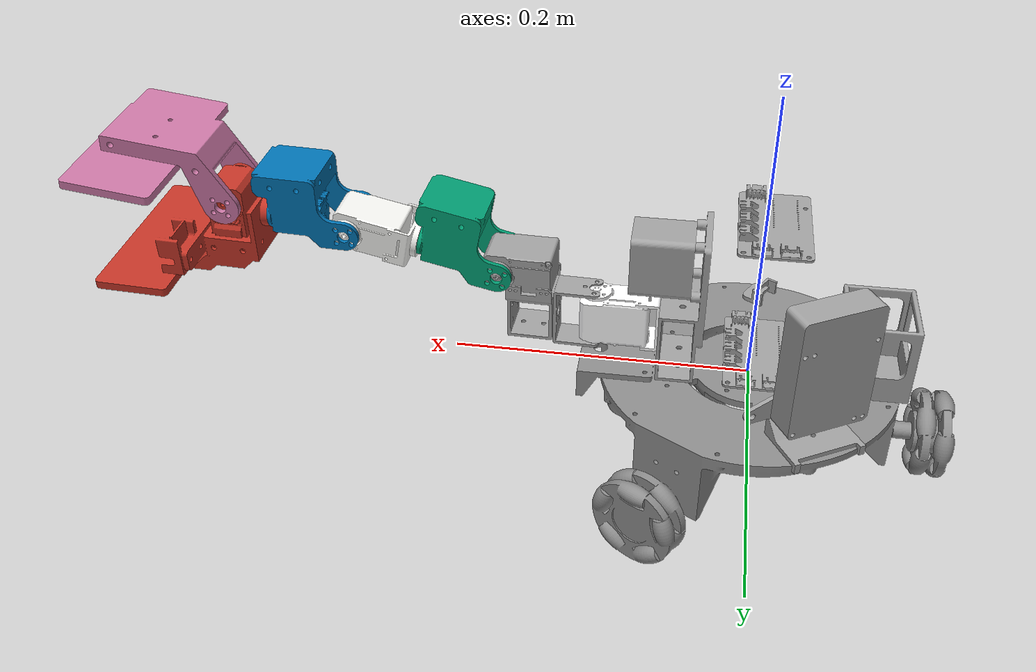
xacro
<?xml version="1.0" ?>
<robot name="assembly_main" xmlns:xacro="http://www.ros.org/wiki/xacro">

<xacro:include filename="/home/keigo/inrof2026_koma_urdf/urdf/materials.xacro" />
<xacro:include filename="/home/keigo/inrof2026_koma_urdf/urdf/assembly_main.trans" />
<link name="base_link">
  <inertial>
    <origin xyz="0.005188065648430864 -0.00026933142160205393 -0.01663287964245459" rpy="0 0 0"/>
    <mass value="4.27590428722208"/>
    <inertia ixx="0.013169" iyy="0.014957" izz="0.025457" ixy="0.000108" iyz="2.4e-05" ixz="-0.000335"/>
  </inertial>
  <visual>
    <origin xyz="0 0 0" rpy="0 0 0"/>
    <geometry>
      <mesh filename="package://assembly_main_description/meshes/base_link.stl" scale="0.001 0.001 0.001"/>
    </geometry>
    <material name="opaque141141141"/>
  </visual>
  <collision>
    <origin xyz="0 0 0" rpy="0 0 0"/>
    <geometry>
      <mesh filename="package://assembly_main_description/meshes/base_link.stl" scale="0.001 0.001 0.001"/>
    </geometry>
  </collision>
</link>

<link name="wheel_control_board_v7_2">
  <inertial>
    <origin xyz="0.021526332400288135 -0.034185196183547054 0.10000262508964397" rpy="0 0 0"/>
    <mass value="0.05597515361092653"/>
    <inertia ixx="3.1e-05" iyy="1e-05" izz="4e-05" ixy="1e-06" iyz="-0.0" ixz="-0.0"/>
  </inertial>
  <visual>
    <origin xyz="0.025 -0.0292 -0.0116" rpy="0 0 0"/>
    <geometry>
      <mesh filename="package://assembly_main_description/meshes/wheel_control_board_v7_2.stl" scale="0.001 0.001 0.001"/>
    </geometry>
    <material name="steel_satin"/>
  </visual>
  <collision>
    <origin xyz="0.025 -0.0292 -0.0116" rpy="0 0 0"/>
    <geometry>
      <mesh filename="package://assembly_main_description/meshes/wheel_control_board_v7_2.stl" scale="0.001 0.001 0.001"/>
    </geometry>
  </collision>
</link>

<link name="raspi4_bracket_v3_1">
  <inertial>
    <origin xyz="0.0038877953241863647 -0.006733826728159031 0.009501909481815375" rpy="0 0 0"/>
    <mass value="0.10147562490881655"/>
    <inertia ixx="2.2e-05" iyy="3.2e-05" izz="3.7e-05" ixy="-9e-06" iyz="4e-06" ixz="-3e-06"/>
  </inertial>
  <visual>
    <origin xyz="0.04 -0.069282 -0.005" rpy="0 0 0"/>
    <geometry>
      <mesh filename="package://assembly_main_description/meshes/raspi4_bracket_v3_1.stl" scale="0.001 0.001 0.001"/>
    </geometry>
    <material name="steel_satin"/>
  </visual>
  <collision>
    <origin xyz="0.04 -0.069282 -0.005" rpy="0 0 0"/>
    <geometry>
      <mesh filename="package://assembly_main_description/meshes/raspi4_bracket_v3_1.stl" scale="0.001 0.001 0.001"/>
    </geometry>
  </collision>
</link>

<link name="raspi4_v2_1">
  <inertial>
    <origin xyz="-0.00749999999999993 0.01299008311032395 0.038590101642230826" rpy="0 0 0"/>
    <mass value="0.7390104624417327"/>
    <inertia ixx="0.000507" iyy="0.00059" izz="0.000215" ixy="-7.2e-05" iyz="1e-06" ixz="1e-06"/>
  </inertial>
  <visual>
    <origin xyz="0.0335 -0.058024 -0.026" rpy="0 0 0"/>
    <geometry>
      <mesh filename="package://assembly_main_description/meshes/raspi4_v2_1.stl" scale="0.001 0.001 0.001"/>
    </geometry>
    <material name="steel_satin"/>
  </visual>
  <collision>
    <origin xyz="0.0335 -0.058024 -0.026" rpy="0 0 0"/>
    <geometry>
      <mesh filename="package://assembly_main_description/meshes/raspi4_v2_1.stl" scale="0.001 0.001 0.001"/>
    </geometry>
  </collision>
</link>

<link name="DZ47B_63_circuit_breaker_holder_v5_1">
  <inertial>
    <origin xyz="0.0378808179258513 -0.021870517177103727 0.0034323448804011907" rpy="0 0 0"/>
    <mass value="0.018924792034229306"/>
    <inertia ixx="8e-06" iyy="2.2e-05" izz="2.9e-05" ixy="1.2e-05" iyz="0.0" ixz="-0.0"/>
  </inertial>
  <visual>
    <origin xyz="0.076172 0.044934 -0.005" rpy="0 0 0"/>
    <geometry>
      <mesh filename="package://assembly_main_description/meshes/DZ47B_63_circuit_breaker_holder_v5_1.stl" scale="0.001 0.001 0.001"/>
    </geometry>
    <material name="steel_satin"/>
  </visual>
  <collision>
    <origin xyz="0.076172 0.044934 -0.005" rpy="0 0 0"/>
    <geometry>
      <mesh filename="package://assembly_main_description/meshes/DZ47B_63_circuit_breaker_holder_v5_1.stl" scale="0.001 0.001 0.001"/>
    </geometry>
  </collision>
</link>

<link name="wheel_control_board_v7_1">
  <inertial>
    <origin xyz="-0.01727366759971175 0.02421480381645276 0.006602625089643976" rpy="0 0 0"/>
    <mass value="0.05597515361092653"/>
    <inertia ixx="3.1e-05" iyy="1e-05" izz="4e-05" ixy="1e-06" iyz="-0.0" ixz="-0.0"/>
  </inertial>
  <visual>
    <origin xyz="-0.0138 0.0292 -0.005" rpy="0 0 0"/>
    <geometry>
      <mesh filename="package://assembly_main_description/meshes/wheel_control_board_v7_1.stl" scale="0.001 0.001 0.001"/>
    </geometry>
    <material name="steel_satin"/>
  </visual>
  <collision>
    <origin xyz="-0.0138 0.0292 -0.005" rpy="0 0 0"/>
    <geometry>
      <mesh filename="package://assembly_main_description/meshes/wheel_control_board_v7_1.stl" scale="0.001 0.001 0.001"/>
    </geometry>
  </collision>
</link>

<link name="lipo+battery_holder_v11_1">
  <inertial>
    <origin xyz="-0.014472410604743746 0.03065000000000157 0.01794464529626638" rpy="0 0 0"/>
    <mass value="0.1619868833872407"/>
    <inertia ixx="0.000116" iyy="0.000102" izz="0.00011" ixy="-0.0" iyz="0.0" ixz="0.0"/>
  </inertial>
  <visual>
    <origin xyz="0.064425 0.03065 -0.005" rpy="0 0 0"/>
    <geometry>
      <mesh filename="package://assembly_main_description/meshes/lipo+battery_holder_v11_1.stl" scale="0.001 0.001 0.001"/>
    </geometry>
    <material name="steel_satin"/>
  </visual>
  <collision>
    <origin xyz="0.064425 0.03065 -0.005" rpy="0 0 0"/>
    <geometry>
      <mesh filename="package://assembly_main_description/meshes/lipo+battery_holder_v11_1.stl" scale="0.001 0.001 0.001"/>
    </geometry>
  </collision>
</link>

<link name="arm_root_v6_1">
  <inertial>
    <origin xyz="0.028836205471188384 -6.461622097946888e-07 -0.006103014091259067" rpy="0 0 0"/>
    <mass value="0.05651259328313663"/>
    <inertia ixx="1e-05" iyy="2.1e-05" izz="1.6e-05" ixy="-0.0" iyz="-0.0" ixz="-1e-06"/>
  </inertial>
  <visual>
    <origin xyz="-0.0615 0.0 -0.044" rpy="0 0 0"/>
    <geometry>
      <mesh filename="package://assembly_main_description/meshes/arm_root_v6_1.stl" scale="0.001 0.001 0.001"/>
    </geometry>
    <material name="opaque254254255"/>
  </visual>
  <collision>
    <origin xyz="-0.0615 0.0 -0.044" rpy="0 0 0"/>
    <geometry>
      <mesh filename="package://assembly_main_description/meshes/arm_root_v6_1.stl" scale="0.001 0.001 0.001"/>
    </geometry>
  </collision>
</link>

<link name="serial_servo_driver_board_x2_v3_1">
  <inertial>
    <origin xyz="0.020000000000000136 0.013999999418854167 -0.018499999999996006" rpy="0 0 0"/>
    <mass value="0.4252482194783379"/>
    <inertia ixx="9.8e-05" iyy="0.000117" izz="9.4e-05" ixy="-0.0" iyz="0.0" ixz="-0.0"/>
  </inertial>
  <visual>
    <origin xyz="-0.0425 0.014 -0.103" rpy="0 0 0"/>
    <geometry>
      <mesh filename="package://assembly_main_description/meshes/serial_servo_driver_board_x2_v3_1.stl" scale="0.001 0.001 0.001"/>
    </geometry>
    <material name="steel_satin"/>
  </visual>
  <collision>
    <origin xyz="-0.0425 0.014 -0.103" rpy="0 0 0"/>
    <geometry>
      <mesh filename="package://assembly_main_description/meshes/serial_servo_driver_board_x2_v3_1.stl" scale="0.001 0.001 0.001"/>
    </geometry>
  </collision>
</link>

<link name="arm_bracket_v14_1">
  <inertial>
    <origin xyz="-0.005004825728865167 0.009999999984475738 0.04726352833341586" rpy="0 0 0"/>
    <mass value="0.21684183891762862"/>
    <inertia ixx="0.000236" iyy="0.000211" izz="7e-05" ixy="-0.0" iyz="0.0" ixz="3.5e-05"/>
  </inertial>
  <visual>
    <origin xyz="-0.047 0.01 -0.005" rpy="0 0 0"/>
    <geometry>
      <mesh filename="package://assembly_main_description/meshes/arm_bracket_v14_1.stl" scale="0.001 0.001 0.001"/>
    </geometry>
    <material name="steel_satin"/>
  </visual>
  <collision>
    <origin xyz="-0.047 0.01 -0.005" rpy="0 0 0"/>
    <geometry>
      <mesh filename="package://assembly_main_description/meshes/arm_bracket_v14_1.stl" scale="0.001 0.001 0.001"/>
    </geometry>
  </collision>
</link>

<link name="roll_1_test_v5_1">
  <inertial>
    <origin xyz="0.033338146216900594 0.020028208922864197 0.022131171383437162" rpy="0 0 0"/>
    <mass value="0.07353297901744495"/>
    <inertia ixx="2.4e-05" iyy="2.9e-05" izz="2.1e-05" ixy="0.0" iyz="-0.0" ixz="0.0"/>
  </inertial>
  <visual>
    <origin xyz="-0.166241 0.02309 -0.07071" rpy="0 0 0"/>
    <geometry>
      <mesh filename="package://assembly_main_description/meshes/roll_1_test_v5_1.stl" scale="0.001 0.001 0.001"/>
    </geometry>
    <material name="oak"/>
  </visual>
  <collision>
    <origin xyz="-0.166241 0.02309 -0.07071" rpy="0 0 0"/>
    <geometry>
      <mesh filename="package://assembly_main_description/meshes/roll_1_test_v5_1.stl" scale="0.001 0.001 0.001"/>
    </geometry>
  </collision>
</link>

<link name="pitch_2_test_v8_1">
  <inertial>
    <origin xyz="0.0311465623628171 -0.0004080664992568701 0.0063401442351962295" rpy="0 0 0"/>
    <mass value="0.058119652228533734"/>
    <inertia ixx="1.1e-05" iyy="1.7e-05" izz="2.2e-05" ixy="-0.0" iyz="0.0" ixz="-2e-06"/>
  </inertial>
  <visual>
    <origin xyz="-0.222219 0.003867 -0.081993" rpy="0 0 0"/>
    <geometry>
      <mesh filename="package://assembly_main_description/meshes/pitch_2_test_v8_1.stl" scale="0.001 0.001 0.001"/>
    </geometry>
    <material name="abs_white"/>
  </visual>
  <collision>
    <origin xyz="-0.222219 0.003867 -0.081993" rpy="0 0 0"/>
    <geometry>
      <mesh filename="package://assembly_main_description/meshes/pitch_2_test_v8_1.stl" scale="0.001 0.001 0.001"/>
    </geometry>
  </collision>
</link>

<link name="roll_2_test_v5_1">
  <inertial>
    <origin xyz="0.037026448800230594 0.02011130721296018 0.015094199070528766" rpy="0 0 0"/>
    <mass value="0.07365581710871624"/>
    <inertia ixx="2.4e-05" iyy="2.9e-05" izz="2.1e-05" ixy="0.0" iyz="-0.0" ixz="-1e-06"/>
  </inertial>
  <visual>
    <origin xyz="-0.266604 0.02625 -0.091794" rpy="0 0 0"/>
    <geometry>
      <mesh filename="package://assembly_main_description/meshes/roll_2_test_v5_1.stl" scale="0.001 0.001 0.001"/>
    </geometry>
    <material name="oak"/>
  </visual>
  <collision>
    <origin xyz="-0.266604 0.02625 -0.091794" rpy="0 0 0"/>
    <geometry>
      <mesh filename="package://assembly_main_description/meshes/roll_2_test_v5_1.stl" scale="0.001 0.001 0.001"/>
    </geometry>
  </collision>
</link>

<link name="hand_unit_v24_1">
  <inertial>
    <origin xyz="0.04289771903858419 -0.0015191951909393686 -0.01510531326448633" rpy="0 0 0"/>
    <mass value="0.13230659416117943"/>
    <inertia ixx="9.9e-05" iyy="0.000138" izz="0.000152" ixy="1e-06" iyz="1e-06" ixz="3.9e-05"/>
  </inertial>
  <visual>
    <origin xyz="-0.323821 0.007368 -0.091973" rpy="0 0 0"/>
    <geometry>
      <mesh filename="package://assembly_main_description/meshes/hand_unit_v24_1.stl" scale="0.001 0.001 0.001"/>
    </geometry>
    <material name="powder_coat_red"/>
  </visual>
  <collision>
    <origin xyz="-0.323821 0.007368 -0.091973" rpy="0 0 0"/>
    <geometry>
      <mesh filename="package://assembly_main_description/meshes/hand_unit_v24_1.stl" scale="0.001 0.001 0.001"/>
    </geometry>
  </collision>
</link>

<link name="hand_finger_v38_1">
  <inertial>
    <origin xyz="0.04146255250769765 0.021778097011469606 0.029487538405841812" rpy="0 0 0"/>
    <mass value="0.07994136386082434"/>
    <inertia ixx="5.9e-05" iyy="4.9e-05" izz="9.5e-05" ixy="-1e-06" iyz="2e-06" ixz="-9e-06"/>
  </inertial>
  <visual>
    <origin xyz="-0.348363 0.030515 -0.10626" rpy="0 0 0"/>
    <geometry>
      <mesh filename="package://assembly_main_description/meshes/hand_finger_v38_1.stl" scale="0.001 0.001 0.001"/>
    </geometry>
    <material name="oak"/>
  </visual>
  <collision>
    <origin xyz="-0.348363 0.030515 -0.10626" rpy="0 0 0"/>
    <geometry>
      <mesh filename="package://assembly_main_description/meshes/hand_finger_v38_1.stl" scale="0.001 0.001 0.001"/>
    </geometry>
  </collision>
</link>

<link name="pitch_1_test_v10_1">
  <inertial>
    <origin xyz="0.0448811665657521 -0.0015159947037514806 0.032721508245901094" rpy="0 0 0"/>
    <mass value="0.11843544806781975"/>
    <inertia ixx="5.6e-05" iyy="7.1e-05" izz="3.8e-05" ixy="-0.0" iyz="-1e-06" ixz="-1.3e-05"/>
  </inertial>
  <visual>
    <origin xyz="-0.1039 -0.0 -0.0194" rpy="0 0 0"/>
    <geometry>
      <mesh filename="package://assembly_main_description/meshes/pitch_1_test_v10_1.stl" scale="0.001 0.001 0.001"/>
    </geometry>
    <material name="steel_satin"/>
  </visual>
  <collision>
    <origin xyz="-0.1039 -0.0 -0.0194" rpy="0 0 0"/>
    <geometry>
      <mesh filename="package://assembly_main_description/meshes/pitch_1_test_v10_1.stl" scale="0.001 0.001 0.001"/>
    </geometry>
  </collision>
</link>

<joint name="Rigid 6" type="fixed">
  <origin xyz="-0.0388 0.0584 0.0066" rpy="0 0 0"/>
  <parent link="wheel_control_board_v7_1"/>
  <child link="wheel_control_board_v7_2"/>
</joint>

<joint name="Rigid 7" type="fixed">
  <origin xyz="-0.04 0.069282 0.005" rpy="0 0 0"/>
  <parent link="base_link"/>
  <child link="raspi4_bracket_v3_1"/>
</joint>

<joint name="Rigid 8" type="fixed">
  <origin xyz="0.0065 -0.011258 0.021" rpy="0 0 0"/>
  <parent link="raspi4_bracket_v3_1"/>
  <child link="raspi4_v2_1"/>
</joint>

<joint name="Rigid 17" type="fixed">
  <origin xyz="-0.076172 -0.044934 0.005" rpy="0 0 0"/>
  <parent link="base_link"/>
  <child link="DZ47B_63_circuit_breaker_holder_v5_1"/>
</joint>

<joint name="Rigid 27" type="fixed">
  <origin xyz="0.0138 -0.0292 0.005" rpy="0 0 0"/>
  <parent link="base_link"/>
  <child link="wheel_control_board_v7_1"/>
</joint>

<joint name="Rigid 31" type="fixed">
  <origin xyz="-0.064425 -0.03065 0.005" rpy="0 0 0"/>
  <parent link="base_link"/>
  <child link="lipo+battery_holder_v11_1"/>
</joint>

<joint name="Rigid 45" type="fixed">
  <origin xyz="0.0145 0.01 0.039" rpy="0 0 0"/>
  <parent link="arm_bracket_v14_1"/>
  <child link="arm_root_v6_1"/>
</joint>

<joint name="Rigid 46" type="fixed">
  <origin xyz="-0.0045 -0.004 0.098" rpy="0 0 0"/>
  <parent link="arm_bracket_v14_1"/>
  <child link="serial_servo_driver_board_x2_v3_1"/>
</joint>

<joint name="Rigid 47" type="fixed">
  <origin xyz="0.047 -0.01 0.005" rpy="0 0 0"/>
  <parent link="base_link"/>
  <child link="arm_bracket_v14_1"/>
</joint>

<joint name="Revolute_2" type="revolute">
  <origin xyz="0.062341 -0.02309 0.05131" rpy="0 0 0"/>
  <parent link="pitch_1_test_v10_1"/>
  <child link="roll_1_test_v5_1"/>
  <axis xyz="0.03553 0.999369 -0.0"/>
  <limit upper="1.919862" lower="-1.396263" effort="100" velocity="100"/>
</joint>

<joint name="Revolute_3" type="continuous">
  <origin xyz="0.055978 0.019223 0.011283" rpy="0 0 0"/>
  <parent link="roll_1_test_v5_1"/>
  <child link="pitch_2_test_v8_1"/>
  <axis xyz="-0.979164 0.034812 -0.200064"/>
</joint>

<joint name="Revolute_4" type="revolute">
  <origin xyz="0.044385 -0.022383 0.009801" rpy="0 0 0"/>
  <parent link="pitch_2_test_v8_1"/>
  <child link="roll_2_test_v5_1"/>
  <axis xyz="0.040993 0.998799 -0.026834"/>
  <limit upper="1.919862" lower="-1.48353" effort="100" velocity="100"/>
</joint>

<joint name="Revolute_5" type="continuous">
  <origin xyz="0.057217 0.018882 0.000179" rpy="0 0 0"/>
  <parent link="roll_2_test_v5_1"/>
  <child link="hand_unit_v24_1"/>
  <axis xyz="-0.999086 0.040649 -0.013249"/>
</joint>

<joint name="Revolute_6" type="revolute">
  <origin xyz="0.024542 -0.023147 0.014287" rpy="0 0 0"/>
  <parent link="hand_unit_v24_1"/>
  <child link="hand_finger_v38_1"/>
  <axis xyz="0.041176 0.998256 -0.042293"/>
  <limit upper="0.872665" lower="-1.047198" effort="100" velocity="100"/>
</joint>

<joint name="Revolute_1" type="continuous">
  <origin xyz="0.0424 0.0 -0.0246" rpy="0 0 0"/>
  <parent link="arm_root_v6_1"/>
  <child link="pitch_1_test_v10_1"/>
  <axis xyz="0.0 -0.0 -1.0"/>
</joint>

</robot>

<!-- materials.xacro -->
<robot name="assembly_main" xmlns:xacro="http://www.ros.org/wiki/xacro" >

<material name="silver_default">
  <color rgba="0.700 0.700 0.700 1.000"/>
</material>
<material name="opaque141141141">
  <color rgba="0.5529411764705883 0.5529411764705883 0.5529411764705883 1.0"/>
</material>
<material name="steel_satin">
  <color rgba="0.6274509803921569 0.6274509803921569 0.6274509803921569 1.0"/>
</material>
<material name="abs_white">
  <color rgba="0.9647058823529412 0.9647058823529412 0.9529411764705882 1.0"/>
</material>
<material name="powder_coat_red">
  <color rgba="0.7686274509803922 0.20784313725490197 0.15294117647058825 0.0"/>
</material>
<material name="opaque254254255">
  <color rgba="0.996078431372549 0.996078431372549 1.0 1.0"/>
</material>
<material name="opaque179179179">
  <color rgba="0.7019607843137254 0.7019607843137254 0.7019607843137254 1.0"/>
</material>

</robot>
